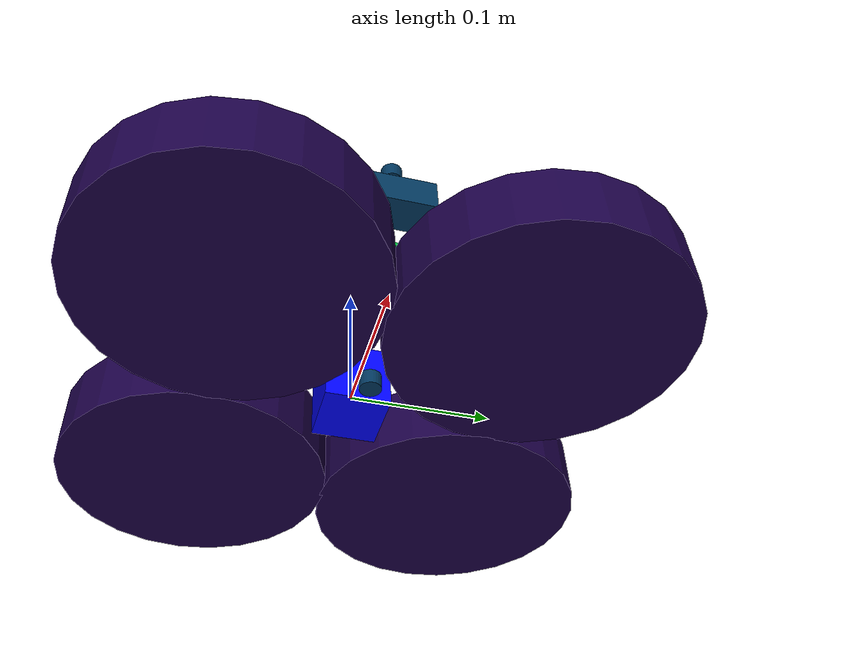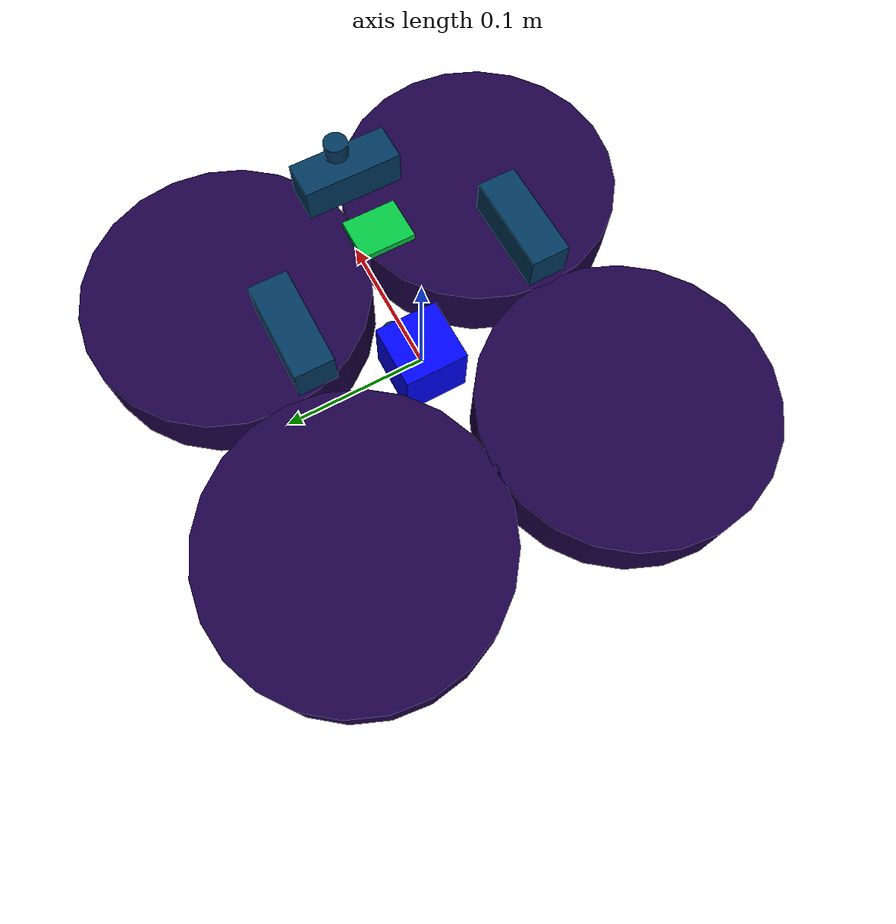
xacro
<?xml version="1.0"?>

<robot name="arid_drone_v1-0" xmlns:xacro="http://wiki.ros.org/xacro">
    <xacro:include
        filename="$(find arid_drone_description)/models/arid/xacro/propellers.xacro" />
    <xacro:include
        filename="$(find arid_drone_description)/models/arid/xacro/cameras.xacro" />

    <xacro:property name="robot_namespace" value="arid" />

    <!-- PROPERTY DESIGNATIONS -->
        <!-- Airframe Dimensions -->
            <!-- Propeller Housing Dimensions-->
            <xacro:property name="prop_housing_radius" value="0.099"/> <!-- cylinder radius -->
            <xacro:property name="prop_force_offset" value="0.00455" /> <!-- propeller plane offset from cylinder centerline-->
            <xacro:property name="prop_housing_height" value="0.045" />"
            <xacro:property name="prop_housing_center_offset" value="0.0975" />
            <!-- Tower Dimensinos -->
            <xacro:property name="tower_length" value="0.150" /> <!-- tower assembly x direction measurement -->
            <xacro:property name="tower_width" value="0.130" /> <!-- tower assembly y direction measurement -->
            <xacro:property name="tower_height" value="0.10570" /> <!-- tower assembly z direction measurement -->
            <xacro:property name="tower_origin">
                <origin xyz="-0.014 0 0" rpy="0 0 0" /> <!-- Centerpoint offset for attachment-->
            </xacro:property>

            <!-- Autopilot Location Dimensions -->
            <xacro:property name="autopilot_height_offset" value="0.084207"/>
            <xacro:property name="autopilot_front_offset" value="0.056524" />
            <xacro:property name="autopilot_length" value="0.029" />
            <xacro:property name="autopilot_width" value="0.036" />
            <xacro:property name="autopilot_height" value="0.005" />
        <!-- Sensor Dimensions -->
            <!-- Realsense Camera Dimensions -->
                <!-- Front Realsense Camera -->
                <xacro:property name="front_realsense_x_offset" value="0.114016" /> <!-- Camera link offset x direction -->
                <xacro:property name="front_realsense_y_offset" value="0.0177" /> <!-- Camera link offset y direction -->
                <xacro:property name="front_realsense_z_offset" value="0.09025" /> <!-- Camera link offset z direction-->
                <!-- Side Realsense Camera -->
                <xacro:property name="side_realsense_x_offset" value="-0.0037" /> <!-- Camera link offset x direction -->
                <xacro:property name="side_realsense_y_offset" value="0.08995" /> <!-- Camera link offset y direction (can be reversed for right camera)-->
                <xacro:property name="side_realsense_z_offset" value="0.09025" /> <!-- Camera link offset z direction-->
                <!-- Realsense Camera Dimensions -->
                <xacro:property name="realsense_x" value="0.025" />
                <xacro:property name="realsense_y" value="0.065" />
                <xacro:property name="realsense_z" value="0.025" />
                <xacro:property name="realsense_lense_y" value="0.0177" />
            <!-- Visual Camera Dimensions-->
                <!-- Top Visual Camera -->
                <xacro:property name="top_visual_x_offset" value="0.0990" />
                <xacro:property name="top_visual_y_offset" value="0.00" />
                <xacro:property name="top_visual_z_offset" value="0.1215" />
                <!-- Bottom Visual Camera -->
                <xacro:property name="bottom_visual_x_offset" value="0.03275" />
                <xacro:property name="bottom_visual_y_offset" value="0.00" />
                <xacro:property name="bottom_visual_z_offset" value="-0.01295" />
                <!-- Visual Camera Dimensinos -->
                <xacro:property name="visual_length" value="0.011" /> <!-- Visual camera cylinder height-->
                <xacro:property name="visual_radius" value="0.0075" /> <!-- Visual camera cylinder radius-->
                <!-- Optical Flow Camera -->
                <xacro:property name="optical_x_offset" value="0.0" />
                <xacro:property name="optical_y_offset" value="-0.0115" />
                <xacro:property name="optical_z_offset" value="-0.00771" />
            <!-- Range Finder Dimensions -->
                <xacro:property name="range_x_offset" value="0.004178" />
                <xacro:property name="range_y_offset" value="0.00992" />
                <xacro:property name="range_z_offset" value="0.013012" />
                <xacro:property name="range_length" value="0.005" />
                <xacro:property name="range_radius" value="0.0025" />

    <!-- Base Link Designation -->
        <link name="base_footprint" />
        <link name="base_link">
            <visual>
                <origin xyz="0 0 ${prop_force_offset}" rpy="0 0 0"/>
                <geometry>
                    <box size="0.045 0.045 0.045" />
                </geometry>
                <material name="base_link-material" >
                    <color rgba="0 0.013 1 1" />
                </material>
            </visual>
            <collision>
                <origin xyz="0 0 ${prop_force_offset}" rpy="0 0 0"/>
                <geometry>
                    <box size="0.045 0.045 0.045" />
                </geometry>
            </collision>
            <inertial>
                <origin xyz="0 0 0.0091" rpy="0 0 0" />
                <mass value="0.01" />
                <inertia ixx="0.00166666666" ixy="0" ixz="0" iyy="0.00166666666" iyz="0" izz="0.00166666666" />
            </inertial>
        </link>
        <joint name="base_link_to_base_footprint" type="fixed">
            <parent link = "base_footprint" />
            <child link="base_link" />
            <origin xyz = "0 0 0" rpy = "0 0 0" />
        </joint>
    <!-- AUTOPILOT -->
        <link name="autopilot">
            <visual>
                <origin xyz="0 0 0" rpy="0 0 0"/>
                <geometry>
                    <box size ="${autopilot_length} ${autopilot_width} ${autopilot_height}" />
                </geometry>
                <material name="autopilot-material">
                    <color rgba="0.005605 0.76815 0.25415 1" />
                </material>
            </visual>
            <collision>
            <origin xyz="0 0 0" rpy="0 0 0"/>
                <geometry>
                    <box size ="${autopilot_length} ${autopilot_width} ${autopilot_height}" />
                </geometry>
            </collision>
            <inertial>
                <origin xyz="0 0 0" rpy="0 0 0" />
                <mass value="0.01"/>
                <inertia ixx="0.00166666666" ixy="0" ixz="0" iyy="0.00166666666" iyz="0" izz="0.00166666666" />
            </inertial>
        </link>
        <joint name="base_link_to_autopilot" type="fixed">
            <parent link="base_link" />
            <child link="autopilot" />
            <origin xyz="${autopilot_front_offset} 0 ${autopilot_height_offset}" rpy="0 0 0" />
        </joint>
    <link name="range_finder">
        <visual>
            <origin xyz="0 0 ${range_length / 2}" rpy="0 0 0" />
            <geometry>
                <cylinder radius="${range_radius}" length="${range_length}" />
            </geometry>
        </visual>
        <collision>
            <origin xyz="0 0 ${range_length / 2}" rpy="0 0 0" />
            <geometry>
                <cylinder radius="${range_radius}" length="${range_length}"/>
            </geometry>
        </collision>
        <inertial>
            <origin xyz="0 0 ${range_length / 2}" rpy="0 0 0" />
            <mass value="0.01" />
            <inertia ixx="0.0033333333" ixy="0" ixz="0" iyy="0.005" iyz="0" izz="0.0033333333" />
        </inertial>
        <sensor name="camera" type="camera">
            <always_on>true</always_on>
            <update_rate>100</update_rate>
            <origin>${range_x_offset} ${range_y_offset} ${range_z_offset} 0 ${pi/2} 0</origin>
            <camera>
                <horizontal_fov>1.3962634</horizontal_fov>
                <image>
                    <width>800</width>
                    <height>600</height>
                    <format>R8G8B8</format>
                </image>
                <clip>
                    <near>0.1</near>
                    <far>100</far>
                </clip>
                <noise>
                    <type>gaussian</type>
                    <mean>0.01</mean>
                </noise>
            </camera>
        </sensor>
    </link>
    <joint name="base_link_to_range_finder" type="fixed">
        <parent link="base_link" />
        <child link="range_finder" />
        <origin xyz="${range_x_offset} ${range_y_offset} ${range_z_offset}" rpy="0 ${pi/2} 0"/>
    </joint>
    <!-- PROPELLERS -->
        <!-- Front Left Propeller -->
        <xacro:propellers
            name="fl"
            parent="base_link"
            fb_reflect="1"
            lr_reflect="1"
            prop_force_offset="${prop_force_offset}"
            prop_housing_radius="${prop_housing_radius}"
            prop_housing_height="${prop_housing_height}"
            prop_housing_center_offset="${prop_housing_center_offset}">
        </xacro:propellers>
        <!-- Front Right Propeller -->
        <xacro:propellers
            name="fr"
            parent="base_link"
            fb_reflect="1"
            lr_reflect="-1"
            prop_force_offset="${prop_force_offset}"
            prop_housing_radius="${prop_housing_radius}"
            prop_housing_height="${prop_housing_height}"
            prop_housing_center_offset="${prop_housing_center_offset}">
        </xacro:propellers>
        <!-- Rear Left Propeller-->
        <xacro:propellers
            name="rl"
            parent="base_link"
            fb_reflect="-1"
            lr_reflect="1"
            prop_force_offset="${prop_force_offset}"
            prop_housing_radius="${prop_housing_radius}"
            prop_housing_height="${prop_housing_height}"
            prop_housing_center_offset="${prop_housing_center_offset}">
        </xacro:propellers>
        <!-- Rear Right Propeller -->
        <xacro:propellers
            name="rr"
            parent="base_link"
            fb_reflect="-1"
            lr_reflect="-1"
            prop_force_offset="${prop_force_offset}"
            prop_housing_radius="${prop_housing_radius}"
            prop_housing_height="${prop_housing_height}"
            prop_housing_center_offset="${prop_housing_center_offset}">
        </xacro:propellers>
    <!-- CAMERAS -->
        <!-- Front Realsense -->
        <xacro:realsense_camera
            name="front"
            realsense_x="${realsense_x}"
            realsense_y="${realsense_y}"
            realsense_z="${realsense_z}"
            realsense_lense_y ="${realsense_lense_y}"
            realsense_x_offset="${front_realsense_x_offset}"
            realsense_y_offset="${front_realsense_y_offset}"
            realsense_z_offset="${front_realsense_z_offset}"
            rotate="0"
            reflect="1">
        </xacro:realsense_camera>
        <!-- Left Realsense -->
        <xacro:realsense_camera
            name="left"
            realsense_x="${realsense_x}"
            realsense_y="${realsense_y}"
            realsense_z="${realsense_z}"
            realsense_lense_y="${realsense_lense_y}"
            realsense_x_offset="${side_realsense_x_offset}"
            realsense_y_offset="${side_realsense_y_offset}"
            realsense_z_offset="${side_realsense_z_offset}"
            rotate="${pi/2}"
            reflect="1">
        </xacro:realsense_camera>
        <!-- Right Realsense -->
        <xacro:realsense_camera
            name="right"
            realsense_x="${realsense_x}"
            realsense_y="${realsense_y}"
            realsense_z="${realsense_z}"
            realsense_lense_y="${-1 * realsense_lense_y}"
            realsense_x_offset="${side_realsense_x_offset}"
            realsense_y_offset="${side_realsense_y_offset}"
            realsense_z_offset="${side_realsense_z_offset}"
            rotate="${-pi/2}"
            reflect="-1">
        </xacro:realsense_camera>
        <!-- Top Visual -->
        <xacro:visual_camera
            name="top"
            visual_length="${visual_length}"
            visual_radius="${visual_radius}"
            visual_x_offset="${top_visual_x_offset}"
            visual_y_offset="${top_visual_y_offset}"
            visual_z_offset="${top_visual_z_offset}"
            rot_x="${-pi/2}"
            rot_y="0"
            rot_z="0"
            jrot_x="${-pi/2}"
            jrot_y="0"
            jrot_z="${-pi/2}">
        </xacro:visual_camera>
        <!-- Bottom Visual -->
        <xacro:visual_camera
            name="bottom"
            visual_length="${visual_length}"
            visual_radius="${visual_radius}"
            visual_x_offset="${bottom_visual_x_offset}"
            visual_y_offset="${bottom_visual_y_offset}"
            visual_z_offset="${bottom_visual_z_offset}"
            rot_x="0"
            rot_y="${pi}"
            rot_z="${pi/2}"
            jrot_x="0"
            jrot_y="${pi}"
            jrot_z="${pi/2}">
        </xacro:visual_camera>
</robot>

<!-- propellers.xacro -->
<robot name="Cypher_Drone_V3" xmlns:xacro="http://wiki.ros.org/xacro">

  <xacro:macro
      name="propellers"
      params="
      name
      parent
      fb_reflect
      lr_reflect
      prop_force_offset
      prop_housing_radius
      prop_housing_height
      prop_housing_center_offset
      ">
    <link name="${name}_propeller_link">
      <visual>
        <origin xyz="0 0 ${prop_force_offset}" rpy="0 0 0"/>
        <geometry>
          <cylinder radius="${prop_housing_radius}" length="${prop_housing_height}"/>
        </geometry>
        <material name="${name}_propeller-material">
          <color rgba="0.107 0.003676 0.2747 1"/>
        </material>
      </visual>
      <collision>
        <origin xyz="0 0 0.0091" rpy="0 0 0"/>
        <geometry>
          <cylinder radius="${prop_housing_radius}" length="${prop_housing_height}"/>
        </geometry>
      </collision>
      <inertial>
        <origin xyz="0 0 0.0091" rpy="0 0 0"/>
        <mass value="0.1"/>
        <inertia
          ixx="0.033333333" ixy="0" ixz="0"
          iyy="0.05"       iyz="0"
          izz="0.033333333"/>
      </inertial>
    </link>

    <joint name="${parent}_to_${name}_propeller_link" type="fixed">
      <parent link="${parent}"/>
      <child  link="${name}_propeller_link"/>
      <origin xyz="${fb_reflect * prop_housing_center_offset} ${lr_reflect * prop_housing_center_offset} 0" rpy="0 0 0"/>
    </joint>
  </xacro:macro>

</robot>

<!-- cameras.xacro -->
<robot name="arid_drone_v1-0" xmlns:xacro="http://wiki.ros.org/xacro">
    <xacro:macro
        name="realsense_camera"
        params="
        name
        realsense_x
        realsense_y
        realsense_z
        realsense_lense_y
        realsense_x_offset
        realsense_y_offset
        realsense_z_offset
        rotate
        reflect
        ">
        <link name="${name}_realsense_link">
            <visual>
                <origin xyz="${-1 * realsense_x / 2} ${-1 * realsense_lense_y} 0" />
                <geometry>
                    <box size="${realsense_x} ${realsense_y} ${realsense_z}"/>
                </geometry>
                <material name="${name}_realsense-material">
                    <color rgba="0.0060488 0.21586 0.36625 1" />
                </material>
            </visual>
            <collision>
                <origin xyz="${-1 * realsense_x / 2} ${realsense_lense_y} 0" />
                <geometry>
                    <box size="${realsense_x} ${realsense_y} ${realsense_z}"/>
                </geometry>
            </collision>
            <inertial>
                <origin xyz="${-1 * realsense_x / 2 } ${-1 * realsense_lense_y} 0" rpy="0 0 0" />
                <mass value="0.1" />
                <inertia ixx="0.0166666666" ixy="0" ixz="0" iyy="0.0166666666" iyz="0" izz="0.0166666666" />
            </inertial>
            <sensor name="camera" type="camera">
                <always_on>true</always_on>
                <update_rate>100</update_rate>
                <origin>${front_realsense_x_offset} ${front_realsense_y_offset} ${front_realsense_z_offset} 0 0 0</origin>
                <camera>
                    <horizontal_fov>1.3962634</horizontal_fov>
                    <image>
                        <width>800</width>
                        <height>600</height>
                        <format>R8G8B8</format>
                    </image>
                    <clip>
                        <near>0.1</near>
                        <far>100</far>
                    </clip>
                    <noise>
                        <type>gaussian</type>
                        <mean>0.01</mean>
                    </noise>
                </camera>
            </sensor>
        </link>
        <joint name="base_link_to_${name}_realsense" type="fixed">
            <parent link="base_link"/>
            <child link="${name}_realsense_link"/>
            <origin xyz="${realsense_x_offset} ${reflect * realsense_y_offset} ${realsense_z_offset}" rpy="0 0 ${rotate}" />
        </joint>

    </xacro:macro>
    <xacro:macro
        name="visual_camera"
        params="
        name
        visual_length
        visual_radius
        visual_x_offset
        visual_y_offset
        visual_z_offset
        rot_x
        rot_y
        rot_z
        jrot_x
        jrot_y
        jrot_z
        ">
        <link name="${name}_visual_link">
            <visual>
                <origin xyz="${-1 * visual_length / 2} 0 0" rpy="${rot_x} ${rot_y} ${rot_z}" />
                <geometry>
                    <cylinder radius="${visual_radius}" length="${visual_length}"/>
                </geometry>
                <material name="${name}_realsense-material">
                    <color rgba="0.0060488 0.21586 0.36625 1" />
                </material>
            </visual>
            <collision>
                <origin xyz="${-1 * visual_length / 2} 0 0" rpy="${rot_x} ${rot_y} ${rot_z}" />
                <geometry>
                    <cylinder radius="${visual_radius}" length="${visual_length}"/>
                </geometry>
            </collision>
            <inertial>
                <origin xyz="${-1 * visual_length / 2} 0 0" rpy="${rot_x} ${rot_y} ${rot_z}" />
                <mass value="0.01" />
                <inertia ixx="0.0033333333" ixy="0" ixz="0" iyy="0.005" iyz="0" izz="0.0033333333" />
            </inertial>
            <sensor name="camera" type="camera">
                <always_on>true</always_on>
                <update_rate>100</update_rate>
                <origin>${visual_x_offset} ${visual_y_offset} ${visual_z_offset} ${jrot_x} ${jrot_y} ${jrot_z}</origin>
                <camera>
                    <horizontal_fov>1.308997</horizontal_fov>
                    <image>
                        <width>1640</width>
                        <height>1232</height>
                        <format></format>
                    </image>
                    <clip>
                        <near>0.1</near>
                        <far>100</far>
                    </clip>
                    <noise>
                        <type>gaussian</type>
                        <mean>0.01</mean>

                    </noise>
                </camera>
            </sensor>
        </link>
        <joint name="base_link_to_${name}_visual" type="fixed">
            <parent link="base_link"/>
            <child link="${name}_visual_link"/>
            <origin xyz="${visual_x_offset} ${visual_y_offset} ${visual_z_offset}" rpy="${jrot_x} ${jrot_y} ${jrot_z}" />
        </joint>

    </xacro:macro>

</robot>
